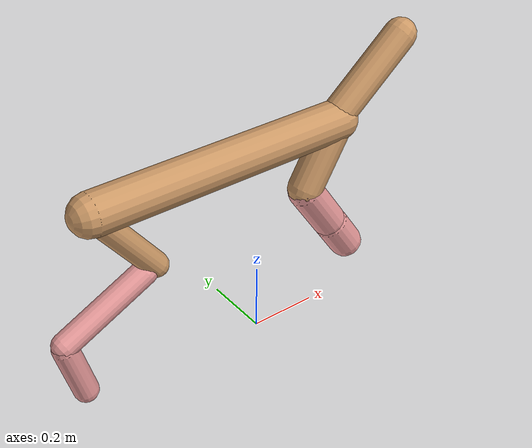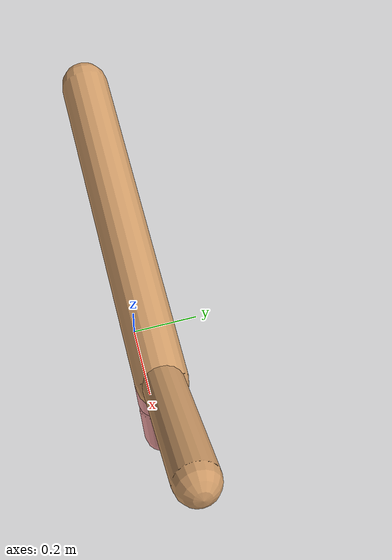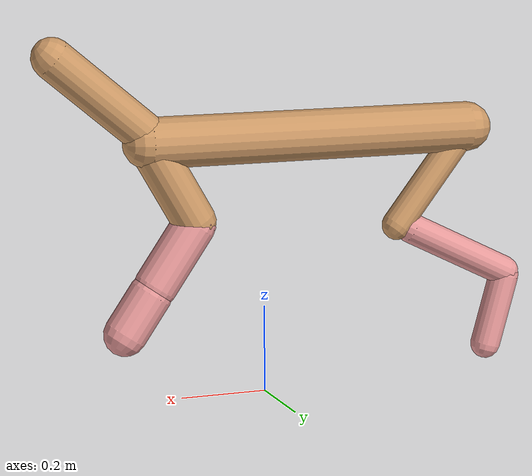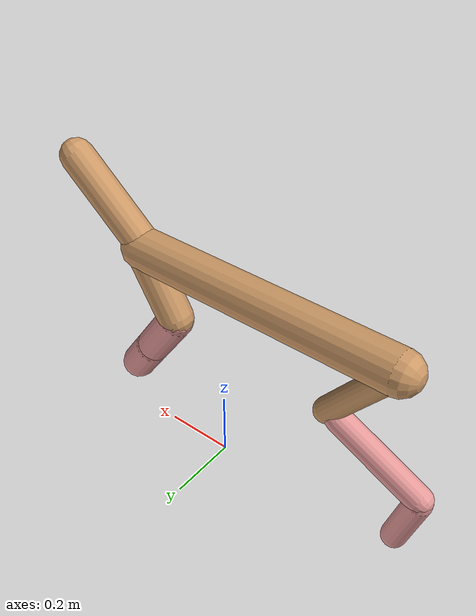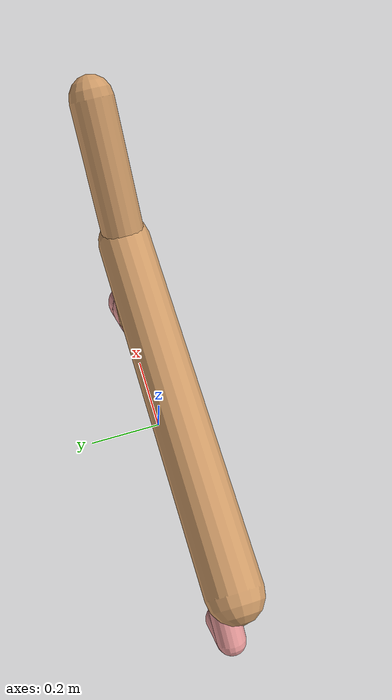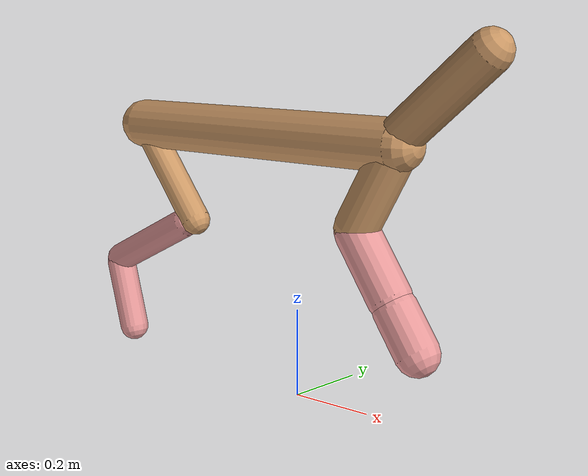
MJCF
<mujoco model="cheetah">
  <compiler angle="radian" coordinate="local" inertiafromgeom="true" settotalmass="14" />
  <default>
    <joint armature=".1" damping=".01" limited="true" solimplimit="0 .8 .03" solreflimit=".02 1" stiffness="8" />
    <geom conaffinity="0" condim="3" contype="1" friction="0.8 .1 .1" rgba="0.8 0.6 .4 1" solimp="0.0 0.8 0.01" solref="0.02 1" />
    <motor ctrllimited="true" ctrlrange="-1 1" />
  </default>
  <size nstack="300000" nuser_geom="1" />
  <option gravity="0 0 -9.81" timestep="0.01" />
  <worldbody>
    <body name="torso" pos="0.0 0.0 0.5902611401567468">
      <joint armature="0" axis="1 0 0" damping="0" limited="false" name="ignorex" pos="0 0 0" stiffness="0" type="slide" />
      <joint armature="0" axis="0 0 1" damping="0" limited="false" name="ignorez" pos="0 0 0" stiffness="0" type="slide" />
      <joint armature="0" axis="0 1 0" damping="0" limited="false" name="ignorey" pos="0 0 0" stiffness="0" type="hinge" />
      <geom fromto="-0.5 0.0 0.0 0.2725486537474776 0.0 0.0" name="torso" size="0.058385751910103166" type="capsule" />
      <geom axisangle="0 1 0 .87" name="head" pos="0.3725486537474776 0.0 0.1" size="0.04664241000949478 0.15" type="capsule" />

      <body name="bthigh" pos="-.5 0 0">
        <joint axis="0 1 0" damping="6" name="bthigh" pos="0 0 0" range="-.52 1.05" stiffness="240" type="hinge" />
        <geom axisangle="0 1 0 -3.8" name="bthigh" pos="0.09177813581286262 0.0 -0.11931157655672141" size="0.035108780515285064 0.131515140104007" type="capsule" />
        <body name="bshin" pos="0.14355627162572523 0.0 -0.2286231531134428">
          <joint axis="0 1 0" damping="4.5" name="bshin" pos="0 0 0" range="-.785 .785" stiffness="180" type="hinge" />
          <geom axisangle="0 1 0 -2.03" name="bshin" pos="-0.1275228703195168 0.0 -0.0637614351597584" rgba="0.9 0.6 0.6 1" size="0.035108780515285064 0.13605014493517967" type="capsule" />
          <body name="bfoot" pos="-0.2550457406390336 0.0 -0.1275228703195168">
            <joint axis="0 1 0" damping="3" name="bfoot" pos="0 0 0" range="-.4 .785" stiffness="120" type="hinge" />
            <geom axisangle="0 1 0 -.27" name="bfoot" pos="0.02741703051856191 0.0 -0.0886483986766835" rgba="0.9 0.6 0.6 1" size="0.035108780515285064 0.08525809082604593" type="capsule" />
            <inertial mass="10" />
          </body>
        </body>
      </body>
      <body name="fthigh" pos="0.2725486537474776 0.0 0.0">
        <joint axis="0 1 0" damping="4.5" name="fthigh" pos="0 0 0" range="-1.5 0.8" stiffness="180" type="hinge" />
        <geom axisangle="0 1 0 .52" name="fthigh" pos="-0.054778389098246255 0.0 -0.09390580988270786" size="0.04964334934899587 0.10279066044545536" type="capsule" />
        <body name="fshin" pos="-0.10955677819649251 0.0 -0.18781161976541572">
          <joint axis="0 1 0" damping="3" name="fshin" pos="0 0 0" range="-1.2 1.1" stiffness="120" type="hinge" />
          <geom axisangle="0 1 0 -.6" name="fshin" pos="0.05090336847828092 0.0 -0.07048158712377357" rgba="0.9 0.6 0.6 1" size="0.04964334934899587 0.0819233835129193" type="capsule" />
          <body name="ffoot" pos="0.10180673695656184 0.0 -0.14096317424754715">
            <joint axis="0 1 0" damping="1.5" name="ffoot" pos="0 0 0" range="-3.1 -0.3" stiffness="60" type="hinge" />
            <geom axisangle="0 1 0 -.6" name="ffoot" pos="0.036402142267006755 0.0 -0.05662555463756607" rgba="0.9 0.6 0.6 1" size="0.04964334934899587 0.054100347602871246" type="capsule" />
            <inertial mass="10" />
          </body>
        </body>
      </body>
    </body>
  </worldbody>
  <actuator>
    <motor gear="120" joint="bthigh" name="bthigh" />
    <motor gear="90" joint="bshin" name="bshin" />
    <motor gear="60" joint="bfoot" name="bfoot" />
    <motor gear="120" joint="fthigh" name="fthigh" />
    <motor gear="60" joint="fshin" name="fshin" />
    <motor gear="30" joint="ffoot" name="ffoot" />
  </actuator>
</mujoco>
